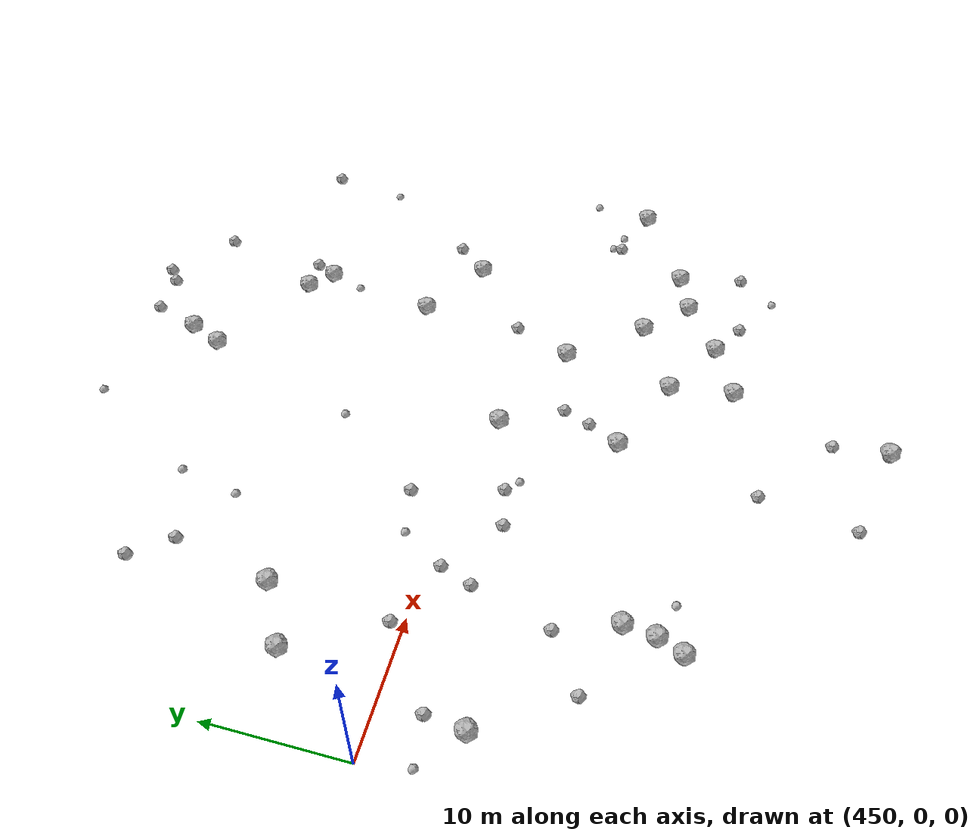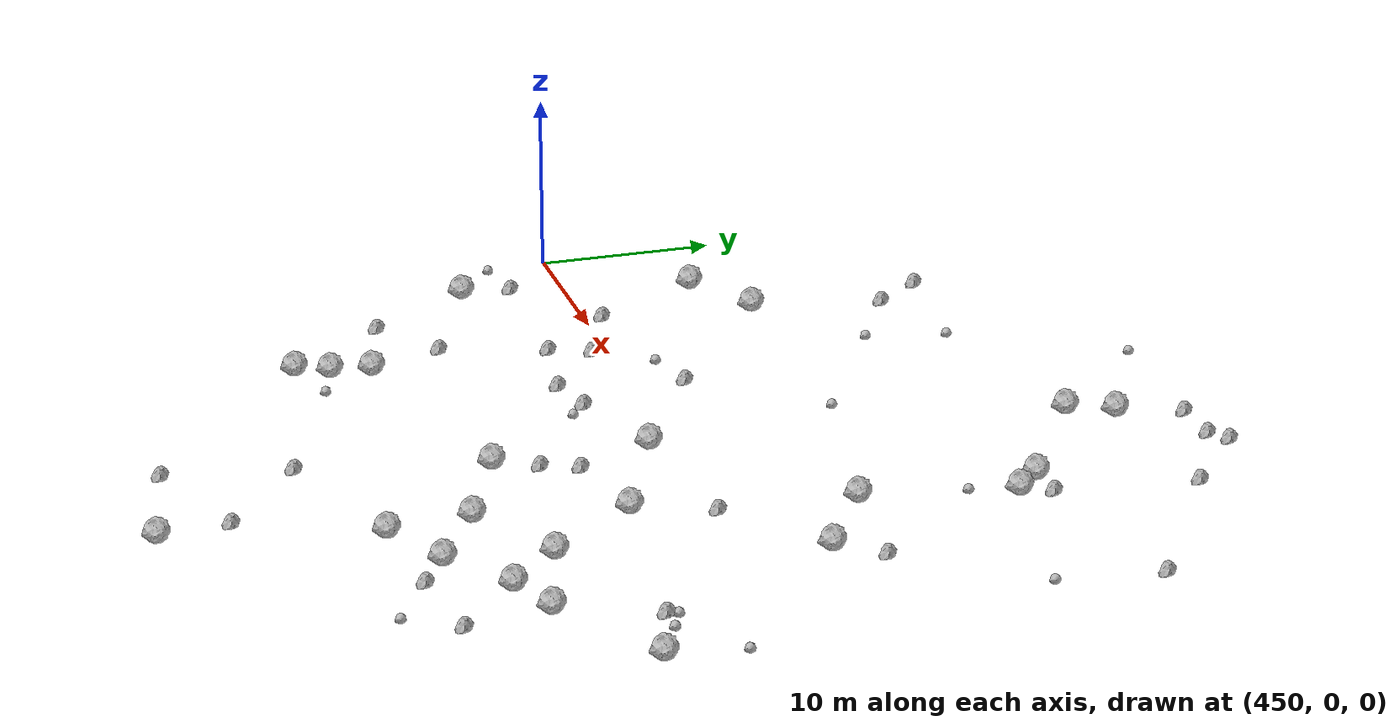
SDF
<sdf version="1.6">
 <world name="default">
  <include><uri>model://sun</uri></include>
  <model name="rock1_12_4">
   <include><uri>model://rock1</uri><pose>453.6135943525579 -5.834393885965699 0.5 0 0 0</pose></include>
  </model>
  <model name="rock1_12_5">
   <include><uri>model://rock1</uri><pose>455.8748731796954 7.1982781189370755 0.5 0 0 0</pose></include>
  </model>
  <model name="rock1_12_6">
   <include><uri>model://rock1</uri><pose>495.7720899555361 -11.772126876615935 0.5 0 0 0</pose></include>
  </model>
  <model name="rock1_12_7">
   <include><uri>model://rock1</uri><pose>460.19642087162106 9.616014220985967 0.5 0 0 0</pose></include>
  </model>
  <model name="rock1_12_8">
   <include><uri>model://rock1</uri><pose>484.5450228818687 -17.604696566261737 0.5 0 0 0</pose></include>
  </model>
  <model name="rock1_12_9">
   <include><uri>model://rock1</uri><pose>485.18665297032567 -4.71249888155231 0.5 0 0 0</pose></include>
  </model>
  <model name="rock1_12_10">
   <include><uri>model://rock1</uri><pose>479.28483026001425 21.704736811771618 0.5 0 0 0</pose></include>
  </model>
  <model name="rock1_12_11">
   <include><uri>model://rock1</uri><pose>488.79192570878075 15.646626932348298 0.5 0 0 0</pose></include>
  </model>
  <model name="rock1_12_12">
   <include><uri>model://rock1</uri><pose>477.5735081465976 -10.203299763461814 0.5 0 0 0</pose></include>
  </model>
  <model name="rock1_12_13">
   <include><uri>model://rock1</uri><pose>463.18655053310874 -13.383958156479508 0.5 0 0 0</pose></include>
  </model>
  <model name="rock1_12_14">
   <include><uri>model://rock1</uri><pose>480.4034849313696 24.203890737749383 0.5 0 0 0</pose></include>
  </model>
  <model name="rock1_12_15">
   <include><uri>model://rock1</uri><pose>477.4128895121175 -1.4319578206688277 0.5 0 0 0</pose></include>
  </model>
  <model name="rock1_12_16">
   <include><uri>model://rock1</uri><pose>487.11902522426544 17.152598570656032 0.5 0 0 0</pose></include>
  </model>
  <model name="rock1_12_17">
   <include><uri>model://rock1</uri><pose>483.8890888070547 -12.884809608136273 0.5 0 0 0</pose></include>
  </model>
  <model name="rock1_12_18">
   <include><uri>model://rock1</uri><pose>492.61789765890114 -12.943762183193577 0.5 0 0 0</pose></include>
  </model>
  <model name="rock1_12_19">
   <include><uri>model://rock1</uri><pose>462.8479527577606 -15.67390392684917 0.5 0 0 0</pose></include>
  </model>
  <model name="rock1_12_20">
   <include><uri>model://rock1</uri><pose>481.7771590410664 -29.15670720961601 0.5 0 0 0</pose></include>
  </model>
  <model name="rock1_12_21">
   <include><uri>model://rock1</uri><pose>462.0571915458505 -17.530660521544714 0.5 0 0 0</pose></include>
  </model>
  <model name="rock1_12_22">
   <include><uri>model://rock1</uri><pose>489.469166991689 -9.923253929067265 0.5 0 0 0</pose></include>
  </model>
  <model name="rock1_12_23">
   <include><uri>model://rock1</uri><pose>492.58418858821915 4.044463611971025 0.5 0 0 0</pose></include>
  </model>
  <model name="rock1_12_24">
   <include><uri>model://rock1</uri><pose>488.65868912298146 -15.64794028461609 0.5 0 0 0</pose></include>
  </model>
  <model name="rock1_12_25">
   <include><uri>model://rock1</uri><pose>487.2171884267054 7.191315274032526 0.5 0 0 0</pose></include>
  </model>
  <model name="rock1_12_26">
   <include><uri>model://rock1</uri><pose>502.4724687522845 -7.856445890710088 0.5 0 0 0</pose></include>
  </model>
  <model name="rock2_12_0">
   <include><uri>model://rock2</uri><pose>459.4376136747042 0.9421881296369996 0.3 0 0 0</pose></include>
  </model>
  <model name="rock2_12_1">
   <include><uri>model://rock2</uri><pose>459.59917861241286 19.618548874443356 0.3 0 0 0</pose></include>
  </model>
  <model name="rock2_12_2">
   <include><uri>model://rock2</uri><pose>491.1993844038466 -17.186864083640778 0.3 0 0 0</pose></include>
  </model>
  <model name="rock2_12_3">
   <include><uri>model://rock2</uri><pose>481.3218426464344 -25.137033742708557 0.3 0 0 0</pose></include>
  </model>
  <model name="rock2_12_4">
   <include><uri>model://rock2</uri><pose>484.71258189918467 27.856210520199802 0.3 0 0 0</pose></include>
  </model>
  <model name="rock2_12_5">
   <include><uri>model://rock2</uri><pose>453.9547606020065 -3.026620108102321 0.3 0 0 0</pose></include>
  </model>
  <model name="rock2_12_6">
   <include><uri>model://rock2</uri><pose>475.4695587794295 -20.527670363144193 0.3 0 0 0</pose></include>
  </model>
  <model name="rock2_12_7">
   <include><uri>model://rock2</uri><pose>461.5430490716352 -9.142198620438055 0.3 0 0 0</pose></include>
  </model>
  <model name="rock2_12_8">
   <include><uri>model://rock2</uri><pose>490.39141183854395 25.17965648458302 0.3 0 0 0</pose></include>
  </model>
  <model name="rock2_12_9">
   <include><uri>model://rock2</uri><pose>496.7982882680011 -16.566403471981857 0.3 0 0 0</pose></include>
  </model>
  <model name="rock2_12_10">
   <include><uri>model://rock2</uri><pose>468.48392479371415 -4.108486372847512 0.3 0 0 0</pose></include>
  </model>
  <model name="rock2_12_11">
   <include><uri>model://rock2</uri><pose>457.56515403287545 -11.791711526895718 0.3 0 0 0</pose></include>
  </model>
  <model name="rock2_12_12">
   <include><uri>model://rock2</uri><pose>494.5598758902547 6.37114168062714 0.3 0 0 0</pose></include>
  </model>
  <model name="rock2_12_13">
   <include><uri>model://rock2</uri><pose>469.6543218784243 2.8577613924652283 0.3 0 0 0</pose></include>
  </model>
  <model name="rock2_12_14">
   <include><uri>model://rock2</uri><pose>486.8487379150454 -0.39748162076443094 0.3 0 0 0</pose></include>
  </model>
  <model name="rock2_12_15">
   <include><uri>model://rock2</uri><pose>498.05681488840185 -6.474588578122486 0.3 0 0 0</pose></include>
  </model>
  <model name="rock2_12_16">
   <include><uri>model://rock2</uri><pose>479.5544501357429 -5.833592391968875 0.3 0 0 0</pose></include>
  </model>
  <model name="rock2_12_17">
   <include><uri>model://rock2</uri><pose>489.54388774706575 17.273564662025592 0.3 0 0 0</pose></include>
  </model>
  <model name="rock2_12_18">
   <include><uri>model://rock2</uri><pose>478.7378133245394 -7.860557487855772 0.3 0 0 0</pose></include>
  </model>
  <model name="rock2_12_19">
   <include><uri>model://rock2</uri><pose>463.3782886398525 -3.288955744886838 0.3 0 0 0</pose></include>
  </model>
  <model name="rock2_12_20">
   <include><uri>model://rock2</uri><pose>485.79296673957657 28.695494550630833 0.3 0 0 0</pose></include>
  </model>
  <model name="rock2_12_21">
   <include><uri>model://rock2</uri><pose>471.4086248408389 -3.445601849187401 0.3 0 0 0</pose></include>
  </model>
  <model name="rock2_12_22">
   <include><uri>model://rock2</uri><pose>500.6119029423624 19.34604272966775 0.3 0 0 0</pose></include>
  </model>
  <model name="rock2_12_23">
   <include><uri>model://rock2</uri><pose>461.6952358297201 16.945043424998026 0.3 0 0 0</pose></include>
  </model>
  <model name="rock2_12_24">
   <include><uri>model://rock2</uri><pose>481.5759992458308 27.73889313266995 0.3 0 0 0</pose></include>
  </model>
  <model name="rock2_12_25">
   <include><uri>model://rock2</uri><pose>464.2647328031165 -0.9766987463284167 0.3 0 0 0</pose></include>
  </model>
  <model name="rock2_12_26">
   <include><uri>model://rock2</uri><pose>474.3196516804048 -27.50193987080356 0.3 0 0 0</pose></include>
  </model>
  <model name="rock3_12_0">
   <include><uri>model://rock3</uri><pose>472.516299284069 27.958666154530043 0.2 0 0 0</pose></include>
  </model>
  <model name="rock3_12_1">
   <include><uri>model://rock3</uri><pose>487.919509299876 13.064915195641134 0.2 0 0 0</pose></include>
  </model>
  <model name="rock3_12_2">
   <include><uri>model://rock3</uri><pose>450.56128595163324 -3.4917260724840524 0.2 0 0 0</pose></include>
  </model>
  <model name="rock3_12_3">
   <include><uri>model://rock3</uri><pose>498.03589603510216 -5.8235810694382835 0.2 0 0 0</pose></include>
  </model>
  <model name="rock3_12_4">
   <include><uri>model://rock3</uri><pose>499.7353314195762 13.582284078501765 0.2 0 0 0</pose></include>
  </model>
  <model name="rock3_12_5">
   <include><uri>model://rock3</uri><pose>472.36704016793 -4.295893155441707 0.2 0 0 0</pose></include>
  </model>
  <model name="rock3_12_6">
   <include><uri>model://rock3</uri><pose>502.93224255469664 -3.596930275182597 0.2 0 0 0</pose></include>
  </model>
  <model name="rock3_12_7">
   <include><uri>model://rock3</uri><pose>475.029319137333 9.650362323782332 0.2 0 0 0</pose></include>
  </model>
  <model name="rock3_12_8">
   <include><uri>model://rock3</uri><pose>465.4368334748471 -16.531148731523103 0.2 0 0 0</pose></include>
  </model>
  <model name="rock3_12_9">
   <include><uri>model://rock3</uri><pose>499.47751989610595 -6.443176067240412 0.2 0 0 0</pose></include>
  </model>
  <model name="rock3_12_10">
   <include><uri>model://rock3</uri><pose>466.2538062485345 2.1356458369044304 0.2 0 0 0</pose></include>
  </model>
  <model name="rock3_12_11">
   <include><uri>model://rock3</uri><pose>494.78694532354973 -19.352501110044166 0.2 0 0 0</pose></include>
  </model>
  <model name="rock3_12_12">
   <include><uri>model://rock3</uri><pose>467.16024660536 19.005551046590334 0.2 0 0 0</pose></include>
  </model>
  <model name="rock3_12_13">
   <include><uri>model://rock3</uri><pose>466.1886606737724 14.507032305355345 0.2 0 0 0</pose></include>
  </model>
 </world>
</sdf>
